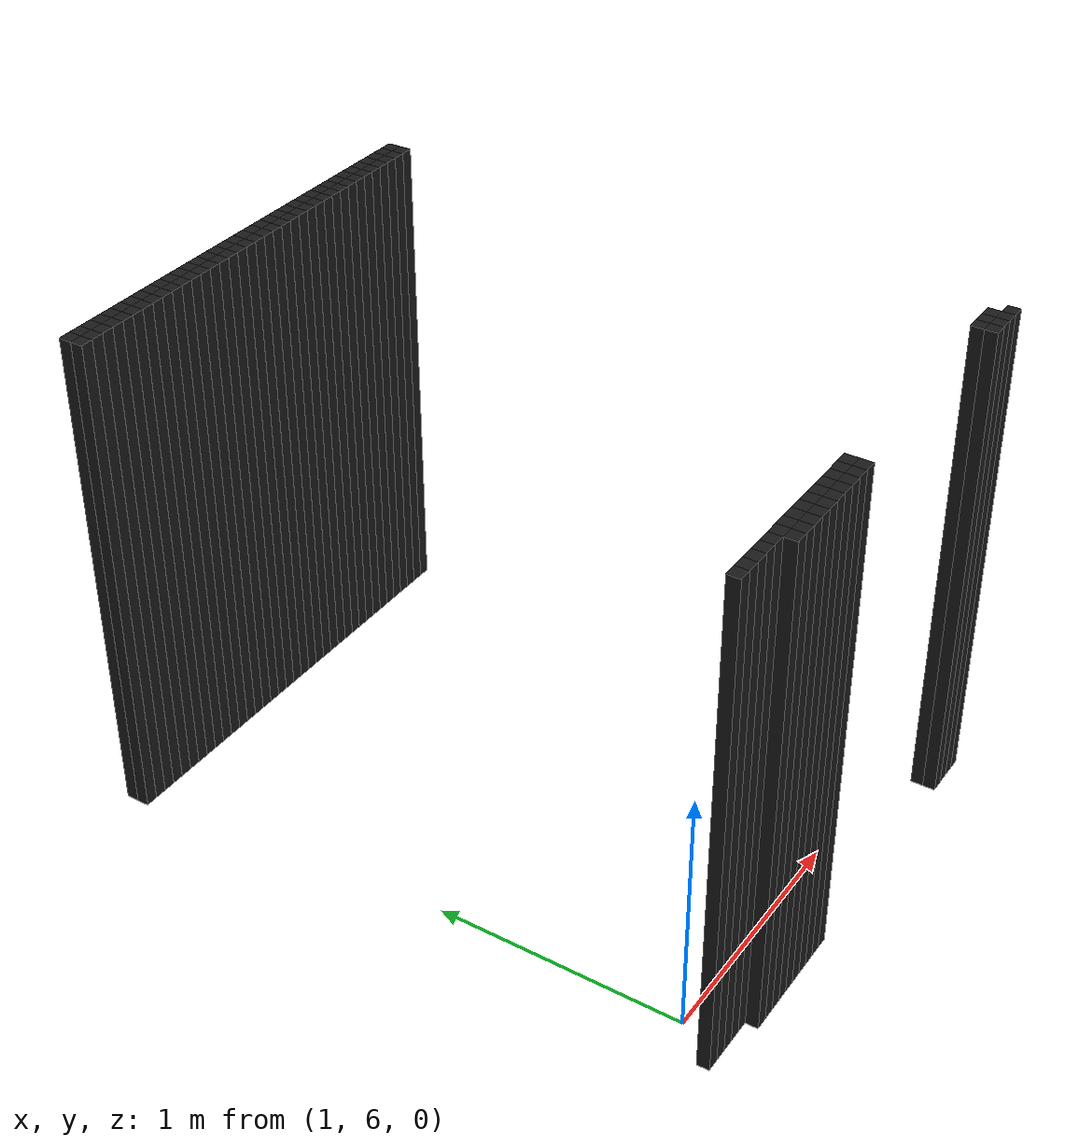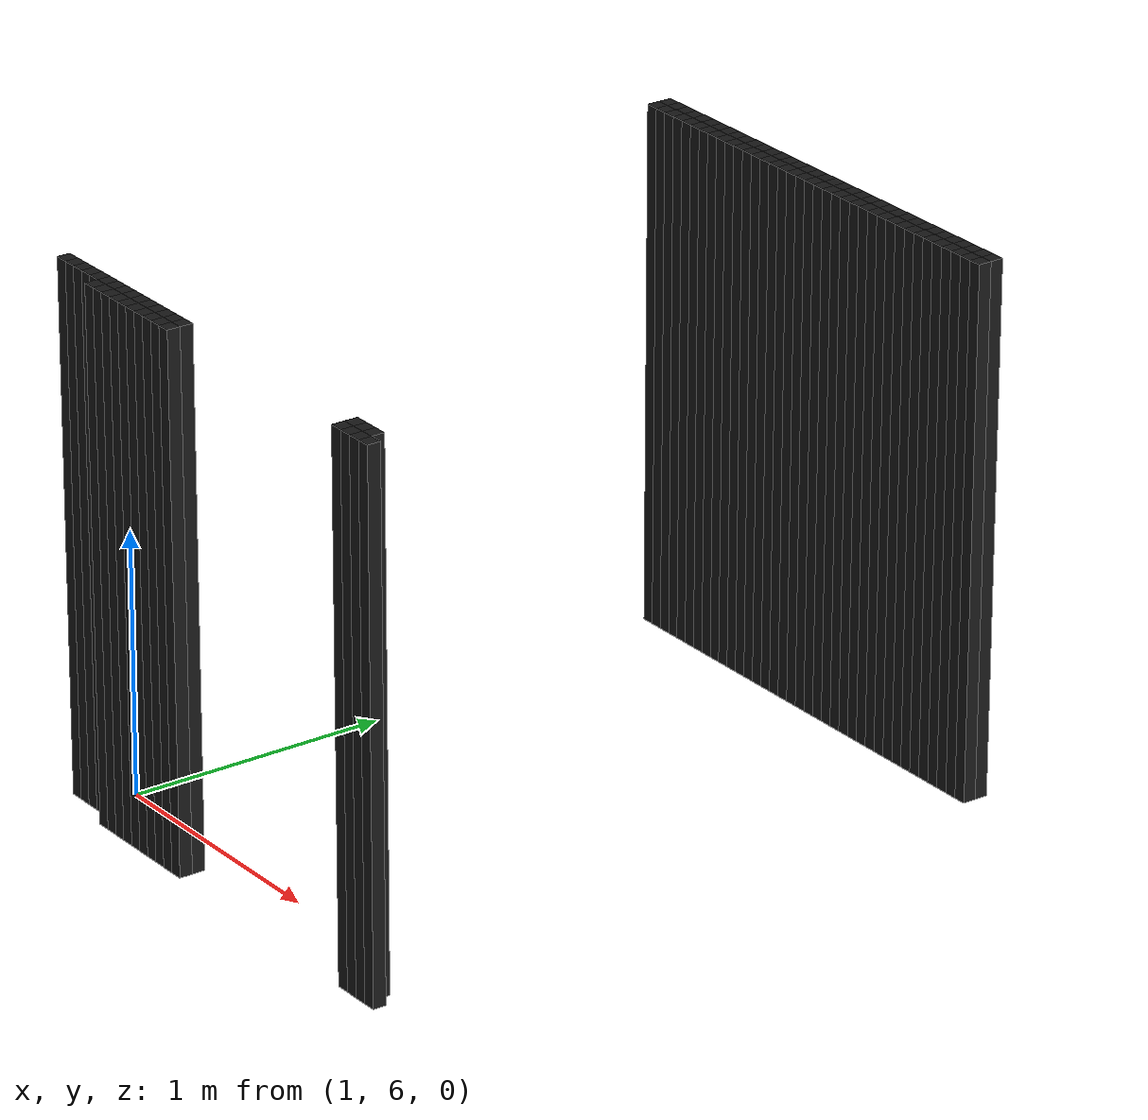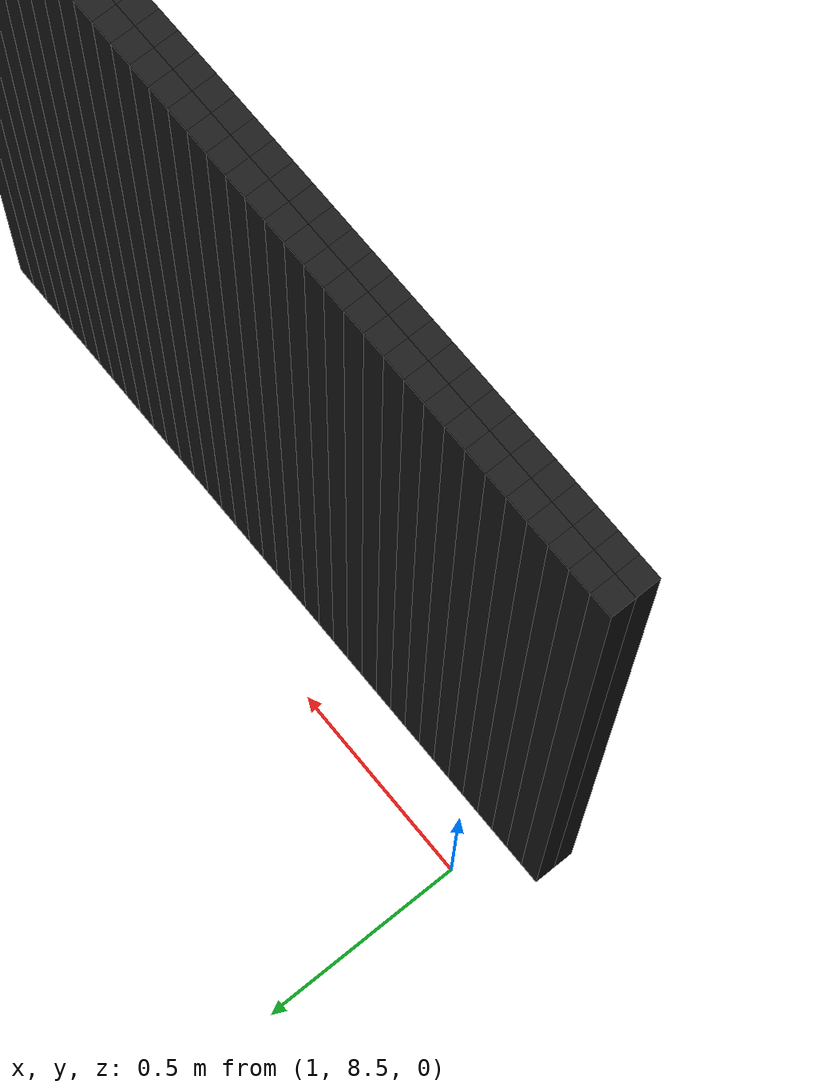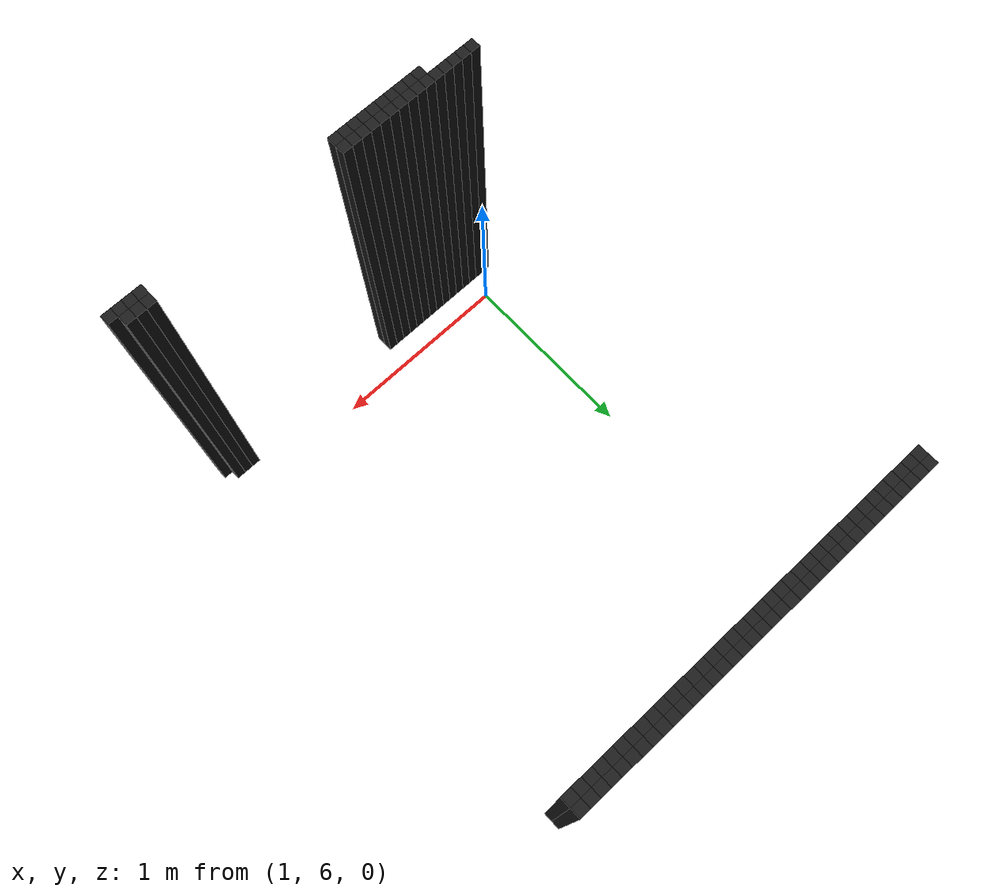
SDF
<sdf version="1.6">
 <model name="obstacle_108_0">
  <pose>0.8900000000000006 8.350000000000001 1.0 0 0 0</pose>
  <static>true</static>
  <link name="box_link">
   <collision name="box_collision"><geometry><box><size>0.05 0.05 2.0</size></box></geometry></collision>
   <visual name="box_visual">
    <geometry><box><size>0.05 0.05 2.0</size></box></geometry>
    <material><ambient>0 0 0 1</ambient><diffuse>0.1 0.1 0.1 1</diffuse></material>
   </visual>
  </link>
 </model>
 <model name="obstacle_109_0">
  <pose>0.9400000000000004 8.350000000000001 1.0 0 0 0</pose>
  <static>true</static>
  <link name="box_link">
   <collision name="box_collision"><geometry><box><size>0.05 0.05 2.0</size></box></geometry></collision>
   <visual name="box_visual">
    <geometry><box><size>0.05 0.05 2.0</size></box></geometry>
    <material><ambient>0 0 0 1</ambient><diffuse>0.1 0.1 0.1 1</diffuse></material>
   </visual>
  </link>
 </model>
 <model name="obstacle_110_0">
  <pose>0.9900000000000002 8.350000000000001 1.0 0 0 0</pose>
  <static>true</static>
  <link name="box_link">
   <collision name="box_collision"><geometry><box><size>0.05 0.05 2.0</size></box></geometry></collision>
   <visual name="box_visual">
    <geometry><box><size>0.05 0.05 2.0</size></box></geometry>
    <material><ambient>0 0 0 1</ambient><diffuse>0.1 0.1 0.1 1</diffuse></material>
   </visual>
  </link>
 </model>
 <model name="obstacle_111_0">
  <pose>1.040000000000001 8.350000000000001 1.0 0 0 0</pose>
  <static>true</static>
  <link name="box_link">
   <collision name="box_collision"><geometry><box><size>0.05 0.05 2.0</size></box></geometry></collision>
   <visual name="box_visual">
    <geometry><box><size>0.05 0.05 2.0</size></box></geometry>
    <material><ambient>0 0 0 1</ambient><diffuse>0.1 0.1 0.1 1</diffuse></material>
   </visual>
  </link>
 </model>
 <model name="obstacle_112_0">
  <pose>1.0900000000000007 8.350000000000001 1.0 0 0 0</pose>
  <static>true</static>
  <link name="box_link">
   <collision name="box_collision"><geometry><box><size>0.05 0.05 2.0</size></box></geometry></collision>
   <visual name="box_visual">
    <geometry><box><size>0.05 0.05 2.0</size></box></geometry>
    <material><ambient>0 0 0 1</ambient><diffuse>0.1 0.1 0.1 1</diffuse></material>
   </visual>
  </link>
 </model>
 <model name="obstacle_113_0">
  <pose>1.1400000000000006 8.350000000000001 1.0 0 0 0</pose>
  <static>true</static>
  <link name="box_link">
   <collision name="box_collision"><geometry><box><size>0.05 0.05 2.0</size></box></geometry></collision>
   <visual name="box_visual">
    <geometry><box><size>0.05 0.05 2.0</size></box></geometry>
    <material><ambient>0 0 0 1</ambient><diffuse>0.1 0.1 0.1 1</diffuse></material>
   </visual>
  </link>
 </model>
 <model name="obstacle_114_0">
  <pose>1.1900000000000004 8.350000000000001 1.0 0 0 0</pose>
  <static>true</static>
  <link name="box_link">
   <collision name="box_collision"><geometry><box><size>0.05 0.05 2.0</size></box></geometry></collision>
   <visual name="box_visual">
    <geometry><box><size>0.05 0.05 2.0</size></box></geometry>
    <material><ambient>0 0 0 1</ambient><diffuse>0.1 0.1 0.1 1</diffuse></material>
   </visual>
  </link>
 </model>
 <model name="obstacle_115_0">
  <pose>1.2400000000000002 8.350000000000001 1.0 0 0 0</pose>
  <static>true</static>
  <link name="box_link">
   <collision name="box_collision"><geometry><box><size>0.05 0.05 2.0</size></box></geometry></collision>
   <visual name="box_visual">
    <geometry><box><size>0.05 0.05 2.0</size></box></geometry>
    <material><ambient>0 0 0 1</ambient><diffuse>0.1 0.1 0.1 1</diffuse></material>
   </visual>
  </link>
 </model>
 <model name="obstacle_116_0">
  <pose>1.290000000000001 8.350000000000001 1.0 0 0 0</pose>
  <static>true</static>
  <link name="box_link">
   <collision name="box_collision"><geometry><box><size>0.05 0.05 2.0</size></box></geometry></collision>
   <visual name="box_visual">
    <geometry><box><size>0.05 0.05 2.0</size></box></geometry>
    <material><ambient>0 0 0 1</ambient><diffuse>0.1 0.1 0.1 1</diffuse></material>
   </visual>
  </link>
 </model>
 <model name="obstacle_117_0">
  <pose>1.3400000000000007 8.350000000000001 1.0 0 0 0</pose>
  <static>true</static>
  <link name="box_link">
   <collision name="box_collision"><geometry><box><size>0.05 0.05 2.0</size></box></geometry></collision>
   <visual name="box_visual">
    <geometry><box><size>0.05 0.05 2.0</size></box></geometry>
    <material><ambient>0 0 0 1</ambient><diffuse>0.1 0.1 0.1 1</diffuse></material>
   </visual>
  </link>
 </model>
 <model name="obstacle_118_0">
  <pose>1.3900000000000006 8.350000000000001 1.0 0 0 0</pose>
  <static>true</static>
  <link name="box_link">
   <collision name="box_collision"><geometry><box><size>0.05 0.05 2.0</size></box></geometry></collision>
   <visual name="box_visual">
    <geometry><box><size>0.05 0.05 2.0</size></box></geometry>
    <material><ambient>0 0 0 1</ambient><diffuse>0.1 0.1 0.1 1</diffuse></material>
   </visual>
  </link>
 </model>
 <model name="obstacle_119_0">
  <pose>1.4400000000000004 8.350000000000001 1.0 0 0 0</pose>
  <static>true</static>
  <link name="box_link">
   <collision name="box_collision"><geometry><box><size>0.05 0.05 2.0</size></box></geometry></collision>
   <visual name="box_visual">
    <geometry><box><size>0.05 0.05 2.0</size></box></geometry>
    <material><ambient>0 0 0 1</ambient><diffuse>0.1 0.1 0.1 1</diffuse></material>
   </visual>
  </link>
 </model>
 <model name="obstacle_120_0">
  <pose>1.4900000000000002 8.350000000000001 1.0 0 0 0</pose>
  <static>true</static>
  <link name="box_link">
   <collision name="box_collision"><geometry><box><size>0.05 0.05 2.0</size></box></geometry></collision>
   <visual name="box_visual">
    <geometry><box><size>0.05 0.05 2.0</size></box></geometry>
    <material><ambient>0 0 0 1</ambient><diffuse>0.1 0.1 0.1 1</diffuse></material>
   </visual>
  </link>
 </model>
 <model name="obstacle_121_0">
  <pose>1.540000000000001 8.350000000000001 1.0 0 0 0</pose>
  <static>true</static>
  <link name="box_link">
   <collision name="box_collision"><geometry><box><size>0.05 0.05 2.0</size></box></geometry></collision>
   <visual name="box_visual">
    <geometry><box><size>0.05 0.05 2.0</size></box></geometry>
    <material><ambient>0 0 0 1</ambient><diffuse>0.1 0.1 0.1 1</diffuse></material>
   </visual>
  </link>
 </model>
 <model name="obstacle_122_0">
  <pose>1.5900000000000007 8.350000000000001 1.0 0 0 0</pose>
  <static>true</static>
  <link name="box_link">
   <collision name="box_collision"><geometry><box><size>0.05 0.05 2.0</size></box></geometry></collision>
   <visual name="box_visual">
    <geometry><box><size>0.05 0.05 2.0</size></box></geometry>
    <material><ambient>0 0 0 1</ambient><diffuse>0.1 0.1 0.1 1</diffuse></material>
   </visual>
  </link>
 </model>
 <model name="obstacle_123_0">
  <pose>1.6400000000000006 8.350000000000001 1.0 0 0 0</pose>
  <static>true</static>
  <link name="box_link">
   <collision name="box_collision"><geometry><box><size>0.05 0.05 2.0</size></box></geometry></collision>
   <visual name="box_visual">
    <geometry><box><size>0.05 0.05 2.0</size></box></geometry>
    <material><ambient>0 0 0 1</ambient><diffuse>0.1 0.1 0.1 1</diffuse></material>
   </visual>
  </link>
 </model>
 <model name="obstacle_124_0">
  <pose>1.6900000000000004 8.350000000000001 1.0 0 0 0</pose>
  <static>true</static>
  <link name="box_link">
   <collision name="box_collision"><geometry><box><size>0.05 0.05 2.0</size></box></geometry></collision>
   <visual name="box_visual">
    <geometry><box><size>0.05 0.05 2.0</size></box></geometry>
    <material><ambient>0 0 0 1</ambient><diffuse>0.1 0.1 0.1 1</diffuse></material>
   </visual>
  </link>
 </model>
 <model name="obstacle_125_0">
  <pose>1.7400000000000002 8.350000000000001 1.0 0 0 0</pose>
  <static>true</static>
  <link name="box_link">
   <collision name="box_collision"><geometry><box><size>0.05 0.05 2.0</size></box></geometry></collision>
   <visual name="box_visual">
    <geometry><box><size>0.05 0.05 2.0</size></box></geometry>
    <material><ambient>0 0 0 1</ambient><diffuse>0.1 0.1 0.1 1</diffuse></material>
   </visual>
  </link>
 </model>
 <model name="obstacle_126_0">
  <pose>1.790000000000001 8.350000000000001 1.0 0 0 0</pose>
  <static>true</static>
  <link name="box_link">
   <collision name="box_collision"><geometry><box><size>0.05 0.05 2.0</size></box></geometry></collision>
   <visual name="box_visual">
    <geometry><box><size>0.05 0.05 2.0</size></box></geometry>
    <material><ambient>0 0 0 1</ambient><diffuse>0.1 0.1 0.1 1</diffuse></material>
   </visual>
  </link>
 </model>
 <model name="obstacle_127_0">
  <pose>1.8400000000000007 8.350000000000001 1.0 0 0 0</pose>
  <static>true</static>
  <link name="box_link">
   <collision name="box_collision"><geometry><box><size>0.05 0.05 2.0</size></box></geometry></collision>
   <visual name="box_visual">
    <geometry><box><size>0.05 0.05 2.0</size></box></geometry>
    <material><ambient>0 0 0 1</ambient><diffuse>0.1 0.1 0.1 1</diffuse></material>
   </visual>
  </link>
 </model>
 <model name="obstacle_128_0">
  <pose>1.8900000000000006 8.350000000000001 1.0 0 0 0</pose>
  <static>true</static>
  <link name="box_link">
   <collision name="box_collision"><geometry><box><size>0.05 0.05 2.0</size></box></geometry></collision>
   <visual name="box_visual">
    <geometry><box><size>0.05 0.05 2.0</size></box></geometry>
    <material><ambient>0 0 0 1</ambient><diffuse>0.1 0.1 0.1 1</diffuse></material>
   </visual>
  </link>
 </model>
 <model name="obstacle_129_0">
  <pose>1.9400000000000004 8.350000000000001 1.0 0 0 0</pose>
  <static>true</static>
  <link name="box_link">
   <collision name="box_collision"><geometry><box><size>0.05 0.05 2.0</size></box></geometry></collision>
   <visual name="box_visual">
    <geometry><box><size>0.05 0.05 2.0</size></box></geometry>
    <material><ambient>0 0 0 1</ambient><diffuse>0.1 0.1 0.1 1</diffuse></material>
   </visual>
  </link>
 </model>
 <model name="obstacle_130_0">
  <pose>1.9900000000000002 8.350000000000001 1.0 0 0 0</pose>
  <static>true</static>
  <link name="box_link">
   <collision name="box_collision"><geometry><box><size>0.05 0.05 2.0</size></box></geometry></collision>
   <visual name="box_visual">
    <geometry><box><size>0.05 0.05 2.0</size></box></geometry>
    <material><ambient>0 0 0 1</ambient><diffuse>0.1 0.1 0.1 1</diffuse></material>
   </visual>
  </link>
 </model>
 <model name="obstacle_131_0">
  <pose>2.040000000000001 8.350000000000001 1.0 0 0 0</pose>
  <static>true</static>
  <link name="box_link">
   <collision name="box_collision"><geometry><box><size>0.05 0.05 2.0</size></box></geometry></collision>
   <visual name="box_visual">
    <geometry><box><size>0.05 0.05 2.0</size></box></geometry>
    <material><ambient>0 0 0 1</ambient><diffuse>0.1 0.1 0.1 1</diffuse></material>
   </visual>
  </link>
 </model>
 <model name="obstacle_132_0">
  <pose>2.0900000000000007 8.350000000000001 1.0 0 0 0</pose>
  <static>true</static>
  <link name="box_link">
   <collision name="box_collision"><geometry><box><size>0.05 0.05 2.0</size></box></geometry></collision>
   <visual name="box_visual">
    <geometry><box><size>0.05 0.05 2.0</size></box></geometry>
    <material><ambient>0 0 0 1</ambient><diffuse>0.1 0.1 0.1 1</diffuse></material>
   </visual>
  </link>
 </model>
 <model name="obstacle_133_0">
  <pose>2.1400000000000006 8.350000000000001 1.0 0 0 0</pose>
  <static>true</static>
  <link name="box_link">
   <collision name="box_collision"><geometry><box><size>0.05 0.05 2.0</size></box></geometry></collision>
   <visual name="box_visual">
    <geometry><box><size>0.05 0.05 2.0</size></box></geometry>
    <material><ambient>0 0 0 1</ambient><diffuse>0.1 0.1 0.1 1</diffuse></material>
   </visual>
  </link>
 </model>
 <model name="obstacle_134_0">
  <pose>2.1900000000000004 8.350000000000001 1.0 0 0 0</pose>
  <static>true</static>
  <link name="box_link">
   <collision name="box_collision"><geometry><box><size>0.05 0.05 2.0</size></box></geometry></collision>
   <visual name="box_visual">
    <geometry><box><size>0.05 0.05 2.0</size></box></geometry>
    <material><ambient>0 0 0 1</ambient><diffuse>0.1 0.1 0.1 1</diffuse></material>
   </visual>
  </link>
 </model>
 <model name="obstacle_135_0">
  <pose>2.24 8.350000000000001 1.0 0 0 0</pose>
  <static>true</static>
  <link name="box_link">
   <collision name="box_collision"><geometry><box><size>0.05 0.05 2.0</size></box></geometry></collision>
   <visual name="box_visual">
    <geometry><box><size>0.05 0.05 2.0</size></box></geometry>
    <material><ambient>0 0 0 1</ambient><diffuse>0.1 0.1 0.1 1</diffuse></material>
   </visual>
  </link>
 </model>
 <model name="obstacle_136_0">
  <pose>2.290000000000001 8.350000000000001 1.0 0 0 0</pose>
  <static>true</static>
  <link name="box_link">
   <collision name="box_collision"><geometry><box><size>0.05 0.05 2.0</size></box></geometry></collision>
   <visual name="box_visual">
    <geometry><box><size>0.05 0.05 2.0</size></box></geometry>
    <material><ambient>0 0 0 1</ambient><diffuse>0.1 0.1 0.1 1</diffuse></material>
   </visual>
  </link>
 </model>
 <model name="obstacle_137_0">
  <pose>2.3400000000000007 8.350000000000001 1.0 0 0 0</pose>
  <static>true</static>
  <link name="box_link">
   <collision name="box_collision"><geometry><box><size>0.05 0.05 2.0</size></box></geometry></collision>
   <visual name="box_visual">
    <geometry><box><size>0.05 0.05 2.0</size></box></geometry>
    <material><ambient>0 0 0 1</ambient><diffuse>0.1 0.1 0.1 1</diffuse></material>
   </visual>
  </link>
 </model>
 <model name="obstacle_138_0">
  <pose>2.3900000000000006 8.350000000000001 1.0 0 0 0</pose>
  <static>true</static>
  <link name="box_link">
   <collision name="box_collision"><geometry><box><size>0.05 0.05 2.0</size></box></geometry></collision>
   <visual name="box_visual">
    <geometry><box><size>0.05 0.05 2.0</size></box></geometry>
    <material><ambient>0 0 0 1</ambient><diffuse>0.1 0.1 0.1 1</diffuse></material>
   </visual>
  </link>
 </model>
 <model name="obstacle_139_0">
  <pose>2.4400000000000004 8.350000000000001 1.0 0 0 0</pose>
  <static>true</static>
  <link name="box_link">
   <collision name="box_collision"><geometry><box><size>0.05 0.05 2.0</size></box></geometry></collision>
   <visual name="box_visual">
    <geometry><box><size>0.05 0.05 2.0</size></box></geometry>
    <material><ambient>0 0 0 1</ambient><diffuse>0.1 0.1 0.1 1</diffuse></material>
   </visual>
  </link>
 </model>
 <model name="obstacle_140_0">
  <pose>2.49 8.350000000000001 1.0 0 0 0</pose>
  <static>true</static>
  <link name="box_link">
   <collision name="box_collision"><geometry><box><size>0.05 0.05 2.0</size></box></geometry></collision>
   <visual name="box_visual">
    <geometry><box><size>0.05 0.05 2.0</size></box></geometry>
    <material><ambient>0 0 0 1</ambient><diffuse>0.1 0.1 0.1 1</diffuse></material>
   </visual>
  </link>
 </model>
 <model name="obstacle_141_0">
  <pose>2.540000000000001 8.350000000000001 1.0 0 0 0</pose>
  <static>true</static>
  <link name="box_link">
   <collision name="box_collision"><geometry><box><size>0.05 0.05 2.0</size></box></geometry></collision>
   <visual name="box_visual">
    <geometry><box><size>0.05 0.05 2.0</size></box></geometry>
    <material><ambient>0 0 0 1</ambient><diffuse>0.1 0.1 0.1 1</diffuse></material>
   </visual>
  </link>
 </model>
 <model name="obstacle_142_0">
  <pose>2.5900000000000007 8.350000000000001 1.0 0 0 0</pose>
  <static>true</static>
  <link name="box_link">
   <collision name="box_collision"><geometry><box><size>0.05 0.05 2.0</size></box></geometry></collision>
   <visual name="box_visual">
    <geometry><box><size>0.05 0.05 2.0</size></box></geometry>
    <material><ambient>0 0 0 1</ambient><diffuse>0.1 0.1 0.1 1</diffuse></material>
   </visual>
  </link>
 </model>
 <model name="obstacle_143_0">
  <pose>2.6400000000000006 8.350000000000001 1.0 0 0 0</pose>
  <static>true</static>
  <link name="box_link">
   <collision name="box_collision"><geometry><box><size>0.05 0.05 2.0</size></box></geometry></collision>
   <visual name="box_visual">
    <geometry><box><size>0.05 0.05 2.0</size></box></geometry>
    <material><ambient>0 0 0 1</ambient><diffuse>0.1 0.1 0.1 1</diffuse></material>
   </visual>
  </link>
 </model>
 <model name="obstacle_144_0">
  <pose>2.6900000000000004 8.350000000000001 1.0 0 0 0</pose>
  <static>true</static>
  <link name="box_link">
   <collision name="box_collision"><geometry><box><size>0.05 0.05 2.0</size></box></geometry></collision>
   <visual name="box_visual">
    <geometry><box><size>0.05 0.05 2.0</size></box></geometry>
    <material><ambient>0 0 0 1</ambient><diffuse>0.1 0.1 0.1 1</diffuse></material>
   </visual>
  </link>
 </model>
 <model name="obstacle_108_1">
  <pose>0.8900000000000006 8.3 1.0 0 0 0</pose>
  <static>true</static>
  <link name="box_link">
   <collision name="box_collision"><geometry><box><size>0.05 0.05 2.0</size></box></geometry></collision>
   <visual name="box_visual">
    <geometry><box><size>0.05 0.05 2.0</size></box></geometry>
    <material><ambient>0 0 0 1</ambient><diffuse>0.1 0.1 0.1 1</diffuse></material>
   </visual>
  </link>
 </model>
 <model name="obstacle_109_1">
  <pose>0.9400000000000004 8.3 1.0 0 0 0</pose>
  <static>true</static>
  <link name="box_link">
   <collision name="box_collision"><geometry><box><size>0.05 0.05 2.0</size></box></geometry></collision>
   <visual name="box_visual">
    <geometry><box><size>0.05 0.05 2.0</size></box></geometry>
    <material><ambient>0 0 0 1</ambient><diffuse>0.1 0.1 0.1 1</diffuse></material>
   </visual>
  </link>
 </model>
 <model name="obstacle_110_1">
  <pose>0.9900000000000002 8.3 1.0 0 0 0</pose>
  <static>true</static>
  <link name="box_link">
   <collision name="box_collision"><geometry><box><size>0.05 0.05 2.0</size></box></geometry></collision>
   <visual name="box_visual">
    <geometry><box><size>0.05 0.05 2.0</size></box></geometry>
    <material><ambient>0 0 0 1</ambient><diffuse>0.1 0.1 0.1 1</diffuse></material>
   </visual>
  </link>
 </model>
 <model name="obstacle_111_1">
  <pose>1.040000000000001 8.3 1.0 0 0 0</pose>
  <static>true</static>
  <link name="box_link">
   <collision name="box_collision"><geometry><box><size>0.05 0.05 2.0</size></box></geometry></collision>
   <visual name="box_visual">
    <geometry><box><size>0.05 0.05 2.0</size></box></geometry>
    <material><ambient>0 0 0 1</ambient><diffuse>0.1 0.1 0.1 1</diffuse></material>
   </visual>
  </link>
 </model>
 <model name="obstacle_112_1">
  <pose>1.0900000000000007 8.3 1.0 0 0 0</pose>
  <static>true</static>
  <link name="box_link">
   <collision name="box_collision"><geometry><box><size>0.05 0.05 2.0</size></box></geometry></collision>
   <visual name="box_visual">
    <geometry><box><size>0.05 0.05 2.0</size></box></geometry>
    <material><ambient>0 0 0 1</ambient><diffuse>0.1 0.1 0.1 1</diffuse></material>
   </visual>
  </link>
 </model>
 <model name="obstacle_113_1">
  <pose>1.1400000000000006 8.3 1.0 0 0 0</pose>
  <static>true</static>
  <link name="box_link">
   <collision name="box_collision"><geometry><box><size>0.05 0.05 2.0</size></box></geometry></collision>
   <visual name="box_visual">
    <geometry><box><size>0.05 0.05 2.0</size></box></geometry>
    <material><ambient>0 0 0 1</ambient><diffuse>0.1 0.1 0.1 1</diffuse></material>
   </visual>
  </link>
 </model>
 <model name="obstacle_114_1">
  <pose>1.1900000000000004 8.3 1.0 0 0 0</pose>
  <static>true</static>
  <link name="box_link">
   <collision name="box_collision"><geometry><box><size>0.05 0.05 2.0</size></box></geometry></collision>
   <visual name="box_visual">
    <geometry><box><size>0.05 0.05 2.0</size></box></geometry>
    <material><ambient>0 0 0 1</ambient><diffuse>0.1 0.1 0.1 1</diffuse></material>
   </visual>
  </link>
 </model>
 <model name="obstacle_115_1">
  <pose>1.2400000000000002 8.3 1.0 0 0 0</pose>
  <static>true</static>
  <link name="box_link">
   <collision name="box_collision"><geometry><box><size>0.05 0.05 2.0</size></box></geometry></collision>
   <visual name="box_visual">
    <geometry><box><size>0.05 0.05 2.0</size></box></geometry>
    <material><ambient>0 0 0 1</ambient><diffuse>0.1 0.1 0.1 1</diffuse></material>
   </visual>
  </link>
 </model>
 <model name="obstacle_116_1">
  <pose>1.290000000000001 8.3 1.0 0 0 0</pose>
  <static>true</static>
  <link name="box_link">
   <collision name="box_collision"><geometry><box><size>0.05 0.05 2.0</size></box></geometry></collision>
   <visual name="box_visual">
    <geometry><box><size>0.05 0.05 2.0</size></box></geometry>
    <material><ambient>0 0 0 1</ambient><diffuse>0.1 0.1 0.1 1</diffuse></material>
   </visual>
  </link>
 </model>
 <model name="obstacle_117_1">
  <pose>1.3400000000000007 8.3 1.0 0 0 0</pose>
  <static>true</static>
  <link name="box_link">
   <collision name="box_collision"><geometry><box><size>0.05 0.05 2.0</size></box></geometry></collision>
   <visual name="box_visual">
    <geometry><box><size>0.05 0.05 2.0</size></box></geometry>
    <material><ambient>0 0 0 1</ambient><diffuse>0.1 0.1 0.1 1</diffuse></material>
   </visual>
  </link>
 </model>
 <model name="obstacle_118_1">
  <pose>1.3900000000000006 8.3 1.0 0 0 0</pose>
  <static>true</static>
  <link name="box_link">
   <collision name="box_collision"><geometry><box><size>0.05 0.05 2.0</size></box></geometry></collision>
   <visual name="box_visual">
    <geometry><box><size>0.05 0.05 2.0</size></box></geometry>
    <material><ambient>0 0 0 1</ambient><diffuse>0.1 0.1 0.1 1</diffuse></material>
   </visual>
  </link>
 </model>
 <model name="obstacle_119_1">
  <pose>1.4400000000000004 8.3 1.0 0 0 0</pose>
  <static>true</static>
  <link name="box_link">
   <collision name="box_collision"><geometry><box><size>0.05 0.05 2.0</size></box></geometry></collision>
   <visual name="box_visual">
    <geometry><box><size>0.05 0.05 2.0</size></box></geometry>
    <material><ambient>0 0 0 1</ambient><diffuse>0.1 0.1 0.1 1</diffuse></material>
   </visual>
  </link>
 </model>
 <model name="obstacle_120_1">
  <pose>1.4900000000000002 8.3 1.0 0 0 0</pose>
  <static>true</static>
  <link name="box_link">
   <collision name="box_collision"><geometry><box><size>0.05 0.05 2.0</size></box></geometry></collision>
   <visual name="box_visual">
    <geometry><box><size>0.05 0.05 2.0</size></box></geometry>
    <material><ambient>0 0 0 1</ambient><diffuse>0.1 0.1 0.1 1</diffuse></material>
   </visual>
  </link>
 </model>
 <model name="obstacle_121_1">
  <pose>1.540000000000001 8.3 1.0 0 0 0</pose>
  <static>true</static>
  <link name="box_link">
   <collision name="box_collision"><geometry><box><size>0.05 0.05 2.0</size></box></geometry></collision>
   <visual name="box_visual">
    <geometry><box><size>0.05 0.05 2.0</size></box></geometry>
    <material><ambient>0 0 0 1</ambient><diffuse>0.1 0.1 0.1 1</diffuse></material>
   </visual>
  </link>
 </model>
 <model name="obstacle_122_1">
  <pose>1.5900000000000007 8.3 1.0 0 0 0</pose>
  <static>true</static>
  <link name="box_link">
   <collision name="box_collision"><geometry><box><size>0.05 0.05 2.0</size></box></geometry></collision>
   <visual name="box_visual">
    <geometry><box><size>0.05 0.05 2.0</size></box></geometry>
    <material><ambient>0 0 0 1</ambient><diffuse>0.1 0.1 0.1 1</diffuse></material>
   </visual>
  </link>
 </model>
 <model name="obstacle_123_1">
  <pose>1.6400000000000006 8.3 1.0 0 0 0</pose>
  <static>true</static>
  <link name="box_link">
   <collision name="box_collision"><geometry><box><size>0.05 0.05 2.0</size></box></geometry></collision>
   <visual name="box_visual">
    <geometry><box><size>0.05 0.05 2.0</size></box></geometry>
    <material><ambient>0 0 0 1</ambient><diffuse>0.1 0.1 0.1 1</diffuse></material>
   </visual>
  </link>
 </model>
 <model name="obstacle_124_1">
  <pose>1.6900000000000004 8.3 1.0 0 0 0</pose>
  <static>true</static>
  <link name="box_link">
   <collision name="box_collision"><geometry><box><size>0.05 0.05 2.0</size></box></geometry></collision>
   <visual name="box_visual">
    <geometry><box><size>0.05 0.05 2.0</size></box></geometry>
    <material><ambient>0 0 0 1</ambient><diffuse>0.1 0.1 0.1 1</diffuse></material>
   </visual>
  </link>
 </model>
 <model name="obstacle_125_1">
  <pose>1.7400000000000002 8.3 1.0 0 0 0</pose>
  <static>true</static>
  <link name="box_link">
   <collision name="box_collision"><geometry><box><size>0.05 0.05 2.0</size></box></geometry></collision>
   <visual name="box_visual">
    <geometry><box><size>0.05 0.05 2.0</size></box></geometry>
    <material><ambient>0 0 0 1</ambient><diffuse>0.1 0.1 0.1 1</diffuse></material>
   </visual>
  </link>
 </model>
 <model name="obstacle_126_1">
  <pose>1.790000000000001 8.3 1.0 0 0 0</pose>
  <static>true</static>
  <link name="box_link">
   <collision name="box_collision"><geometry><box><size>0.05 0.05 2.0</size></box></geometry></collision>
   <visual name="box_visual">
    <geometry><box><size>0.05 0.05 2.0</size></box></geometry>
    <material><ambient>0 0 0 1</ambient><diffuse>0.1 0.1 0.1 1</diffuse></material>
   </visual>
  </link>
 </model>
 <model name="obstacle_127_1">
  <pose>1.8400000000000007 8.3 1.0 0 0 0</pose>
  <static>true</static>
  <link name="box_link">
   <collision name="box_collision"><geometry><box><size>0.05 0.05 2.0</size></box></geometry></collision>
   <visual name="box_visual">
    <geometry><box><size>0.05 0.05 2.0</size></box></geometry>
    <material><ambient>0 0 0 1</ambient><diffuse>0.1 0.1 0.1 1</diffuse></material>
   </visual>
  </link>
 </model>
 <model name="obstacle_128_1">
  <pose>1.8900000000000006 8.3 1.0 0 0 0</pose>
  <static>true</static>
  <link name="box_link">
   <collision name="box_collision"><geometry><box><size>0.05 0.05 2.0</size></box></geometry></collision>
   <visual name="box_visual">
    <geometry><box><size>0.05 0.05 2.0</size></box></geometry>
    <material><ambient>0 0 0 1</ambient><diffuse>0.1 0.1 0.1 1</diffuse></material>
   </visual>
  </link>
 </model>
 <model name="obstacle_129_1">
  <pose>1.9400000000000004 8.3 1.0 0 0 0</pose>
  <static>true</static>
  <link name="box_link">
   <collision name="box_collision"><geometry><box><size>0.05 0.05 2.0</size></box></geometry></collision>
   <visual name="box_visual">
    <geometry><box><size>0.05 0.05 2.0</size></box></geometry>
    <material><ambient>0 0 0 1</ambient><diffuse>0.1 0.1 0.1 1</diffuse></material>
   </visual>
  </link>
 </model>
 <model name="obstacle_130_1">
  <pose>1.9900000000000002 8.3 1.0 0 0 0</pose>
  <static>true</static>
  <link name="box_link">
   <collision name="box_collision"><geometry><box><size>0.05 0.05 2.0</size></box></geometry></collision>
   <visual name="box_visual">
    <geometry><box><size>0.05 0.05 2.0</size></box></geometry>
    <material><ambient>0 0 0 1</ambient><diffuse>0.1 0.1 0.1 1</diffuse></material>
   </visual>
  </link>
 </model>
 <model name="obstacle_131_1">
  <pose>2.040000000000001 8.3 1.0 0 0 0</pose>
  <static>true</static>
  <link name="box_link">
   <collision name="box_collision"><geometry><box><size>0.05 0.05 2.0</size></box></geometry></collision>
   <visual name="box_visual">
    <geometry><box><size>0.05 0.05 2.0</size></box></geometry>
    <material><ambient>0 0 0 1</ambient><diffuse>0.1 0.1 0.1 1</diffuse></material>
   </visual>
  </link>
 </model>
 <model name="obstacle_132_1">
  <pose>2.0900000000000007 8.3 1.0 0 0 0</pose>
  <static>true</static>
  <link name="box_link">
   <collision name="box_collision"><geometry><box><size>0.05 0.05 2.0</size></box></geometry></collision>
   <visual name="box_visual">
    <geometry><box><size>0.05 0.05 2.0</size></box></geometry>
    <material><ambient>0 0 0 1</ambient><diffuse>0.1 0.1 0.1 1</diffuse></material>
   </visual>
  </link>
 </model>
 <model name="obstacle_133_1">
  <pose>2.1400000000000006 8.3 1.0 0 0 0</pose>
  <static>true</static>
  <link name="box_link">
   <collision name="box_collision"><geometry><box><size>0.05 0.05 2.0</size></box></geometry></collision>
   <visual name="box_visual">
    <geometry><box><size>0.05 0.05 2.0</size></box></geometry>
    <material><ambient>0 0 0 1</ambient><diffuse>0.1 0.1 0.1 1</diffuse></material>
   </visual>
  </link>
 </model>
 <model name="obstacle_134_1">
  <pose>2.1900000000000004 8.3 1.0 0 0 0</pose>
  <static>true</static>
  <link name="box_link">
   <collision name="box_collision"><geometry><box><size>0.05 0.05 2.0</size></box></geometry></collision>
   <visual name="box_visual">
    <geometry><box><size>0.05 0.05 2.0</size></box></geometry>
    <material><ambient>0 0 0 1</ambient><diffuse>0.1 0.1 0.1 1</diffuse></material>
   </visual>
  </link>
 </model>
 <model name="obstacle_135_1">
  <pose>2.24 8.3 1.0 0 0 0</pose>
  <static>true</static>
  <link name="box_link">
   <collision name="box_collision"><geometry><box><size>0.05 0.05 2.0</size></box></geometry></collision>
   <visual name="box_visual">
    <geometry><box><size>0.05 0.05 2.0</size></box></geometry>
    <material><ambient>0 0 0 1</ambient><diffuse>0.1 0.1 0.1 1</diffuse></material>
   </visual>
  </link>
 </model>
 <model name="obstacle_136_1">
  <pose>2.290000000000001 8.3 1.0 0 0 0</pose>
  <static>true</static>
  <link name="box_link">
   <collision name="box_collision"><geometry><box><size>0.05 0.05 2.0</size></box></geometry></collision>
   <visual name="box_visual">
    <geometry><box><size>0.05 0.05 2.0</size></box></geometry>
    <material><ambient>0 0 0 1</ambient><diffuse>0.1 0.1 0.1 1</diffuse></material>
   </visual>
  </link>
 </model>
 <model name="obstacle_137_1">
  <pose>2.3400000000000007 8.3 1.0 0 0 0</pose>
  <static>true</static>
  <link name="box_link">
   <collision name="box_collision"><geometry><box><size>0.05 0.05 2.0</size></box></geometry></collision>
   <visual name="box_visual">
    <geometry><box><size>0.05 0.05 2.0</size></box></geometry>
    <material><ambient>0 0 0 1</ambient><diffuse>0.1 0.1 0.1 1</diffuse></material>
   </visual>
  </link>
 </model>
 <model name="obstacle_138_1">
  <pose>2.3900000000000006 8.3 1.0 0 0 0</pose>
  <static>true</static>
  <link name="box_link">
   <collision name="box_collision"><geometry><box><size>0.05 0.05 2.0</size></box></geometry></collision>
   <visual name="box_visual">
    <geometry><box><size>0.05 0.05 2.0</size></box></geometry>
    <material><ambient>0 0 0 1</ambient><diffuse>0.1 0.1 0.1 1</diffuse></material>
   </visual>
  </link>
 </model>
 <model name="obstacle_139_1">
  <pose>2.4400000000000004 8.3 1.0 0 0 0</pose>
  <static>true</static>
  <link name="box_link">
   <collision name="box_collision"><geometry><box><size>0.05 0.05 2.0</size></box></geometry></collision>
   <visual name="box_visual">
    <geometry><box><size>0.05 0.05 2.0</size></box></geometry>
    <material><ambient>0 0 0 1</ambient><diffuse>0.1 0.1 0.1 1</diffuse></material>
   </visual>
  </link>
 </model>
 <model name="obstacle_140_1">
  <pose>2.49 8.3 1.0 0 0 0</pose>
  <static>true</static>
  <link name="box_link">
   <collision name="box_collision"><geometry><box><size>0.05 0.05 2.0</size></box></geometry></collision>
   <visual name="box_visual">
    <geometry><box><size>0.05 0.05 2.0</size></box></geometry>
    <material><ambient>0 0 0 1</ambient><diffuse>0.1 0.1 0.1 1</diffuse></material>
   </visual>
  </link>
 </model>
 <model name="obstacle_141_1">
  <pose>2.540000000000001 8.3 1.0 0 0 0</pose>
  <static>true</static>
  <link name="box_link">
   <collision name="box_collision"><geometry><box><size>0.05 0.05 2.0</size></box></geometry></collision>
   <visual name="box_visual">
    <geometry><box><size>0.05 0.05 2.0</size></box></geometry>
    <material><ambient>0 0 0 1</ambient><diffuse>0.1 0.1 0.1 1</diffuse></material>
   </visual>
  </link>
 </model>
 <model name="obstacle_142_1">
  <pose>2.5900000000000007 8.3 1.0 0 0 0</pose>
  <static>true</static>
  <link name="box_link">
   <collision name="box_collision"><geometry><box><size>0.05 0.05 2.0</size></box></geometry></collision>
   <visual name="box_visual">
    <geometry><box><size>0.05 0.05 2.0</size></box></geometry>
    <material><ambient>0 0 0 1</ambient><diffuse>0.1 0.1 0.1 1</diffuse></material>
   </visual>
  </link>
 </model>
 <model name="obstacle_143_1">
  <pose>2.6400000000000006 8.3 1.0 0 0 0</pose>
  <static>true</static>
  <link name="box_link">
   <collision name="box_collision"><geometry><box><size>0.05 0.05 2.0</size></box></geometry></collision>
   <visual name="box_visual">
    <geometry><box><size>0.05 0.05 2.0</size></box></geometry>
    <material><ambient>0 0 0 1</ambient><diffuse>0.1 0.1 0.1 1</diffuse></material>
   </visual>
  </link>
 </model>
 <model name="obstacle_144_1">
  <pose>2.6900000000000004 8.3 1.0 0 0 0</pose>
  <static>true</static>
  <link name="box_link">
   <collision name="box_collision"><geometry><box><size>0.05 0.05 2.0</size></box></geometry></collision>
   <visual name="box_visual">
    <geometry><box><size>0.05 0.05 2.0</size></box></geometry>
    <material><ambient>0 0 0 1</ambient><diffuse>0.1 0.1 0.1 1</diffuse></material>
   </visual>
  </link>
 </model>
 <model name="obstacle_108_50">
  <pose>0.8900000000000006 5.8500000000000005 1.0 0 0 0</pose>
  <static>true</static>
  <link name="box_link">
   <collision name="box_collision"><geometry><box><size>0.05 0.05 2.0</size></box></geometry></collision>
   <visual name="box_visual">
    <geometry><box><size>0.05 0.05 2.0</size></box></geometry>
    <material><ambient>0 0 0 1</ambient><diffuse>0.1 0.1 0.1 1</diffuse></material>
   </visual>
  </link>
 </model>
 <model name="obstacle_109_50">
  <pose>0.9400000000000004 5.8500000000000005 1.0 0 0 0</pose>
  <static>true</static>
  <link name="box_link">
   <collision name="box_collision"><geometry><box><size>0.05 0.05 2.0</size></box></geometry></collision>
   <visual name="box_visual">
    <geometry><box><size>0.05 0.05 2.0</size></box></geometry>
    <material><ambient>0 0 0 1</ambient><diffuse>0.1 0.1 0.1 1</diffuse></material>
   </visual>
  </link>
 </model>
 <model name="obstacle_110_50">
  <pose>0.9900000000000002 5.8500000000000005 1.0 0 0 0</pose>
  <static>true</static>
  <link name="box_link">
   <collision name="box_collision"><geometry><box><size>0.05 0.05 2.0</size></box></geometry></collision>
   <visual name="box_visual">
    <geometry><box><size>0.05 0.05 2.0</size></box></geometry>
    <material><ambient>0 0 0 1</ambient><diffuse>0.1 0.1 0.1 1</diffuse></material>
   </visual>
  </link>
 </model>
 <model name="obstacle_111_50">
  <pose>1.040000000000001 5.8500000000000005 1.0 0 0 0</pose>
  <static>true</static>
  <link name="box_link">
   <collision name="box_collision"><geometry><box><size>0.05 0.05 2.0</size></box></geometry></collision>
   <visual name="box_visual">
    <geometry><box><size>0.05 0.05 2.0</size></box></geometry>
    <material><ambient>0 0 0 1</ambient><diffuse>0.1 0.1 0.1 1</diffuse></material>
   </visual>
  </link>
 </model>
 <model name="obstacle_112_50">
  <pose>1.0900000000000007 5.8500000000000005 1.0 0 0 0</pose>
  <static>true</static>
  <link name="box_link">
   <collision name="box_collision"><geometry><box><size>0.05 0.05 2.0</size></box></geometry></collision>
   <visual name="box_visual">
    <geometry><box><size>0.05 0.05 2.0</size></box></geometry>
    <material><ambient>0 0 0 1</ambient><diffuse>0.1 0.1 0.1 1</diffuse></material>
   </visual>
  </link>
 </model>
 <model name="obstacle_113_50">
  <pose>1.1400000000000006 5.8500000000000005 1.0 0 0 0</pose>
  <static>true</static>
  <link name="box_link">
   <collision name="box_collision"><geometry><box><size>0.05 0.05 2.0</size></box></geometry></collision>
   <visual name="box_visual">
    <geometry><box><size>0.05 0.05 2.0</size></box></geometry>
    <material><ambient>0 0 0 1</ambient><diffuse>0.1 0.1 0.1 1</diffuse></material>
   </visual>
  </link>
 </model>
 <model name="obstacle_114_50">
  <pose>1.1900000000000004 5.8500000000000005 1.0 0 0 0</pose>
  <static>true</static>
  <link name="box_link">
   <collision name="box_collision"><geometry><box><size>0.05 0.05 2.0</size></box></geometry></collision>
   <visual name="box_visual">
    <geometry><box><size>0.05 0.05 2.0</size></box></geometry>
    <material><ambient>0 0 0 1</ambient><diffuse>0.1 0.1 0.1 1</diffuse></material>
   </visual>
  </link>
 </model>
 <model name="obstacle_115_50">
  <pose>1.2400000000000002 5.8500000000000005 1.0 0 0 0</pose>
  <static>true</static>
  <link name="box_link">
   <collision name="box_collision"><geometry><box><size>0.05 0.05 2.0</size></box></geometry></collision>
   <visual name="box_visual">
    <geometry><box><size>0.05 0.05 2.0</size></box></geometry>
    <material><ambient>0 0 0 1</ambient><diffuse>0.1 0.1 0.1 1</diffuse></material>
   </visual>
  </link>
 </model>
 <model name="obstacle_116_50">
  <pose>1.290000000000001 5.8500000000000005 1.0 0 0 0</pose>
  <static>true</static>
  <link name="box_link">
   <collision name="box_collision"><geometry><box><size>0.05 0.05 2.0</size></box></geometry></collision>
   <visual name="box_visual">
    <geometry><box><size>0.05 0.05 2.0</size></box></geometry>
    <material><ambient>0 0 0 1</ambient><diffuse>0.1 0.1 0.1 1</diffuse></material>
   </visual>
  </link>
 </model>
 <model name="obstacle_117_50">
  <pose>1.3400000000000007 5.8500000000000005 1.0 0 0 0</pose>
  <static>true</static>
  <link name="box_link">
   <collision name="box_collision"><geometry><box><size>0.05 0.05 2.0</size></box></geometry></collision>
   <visual name="box_visual">
    <geometry><box><size>0.05 0.05 2.0</size></box></geometry>
    <material><ambient>0 0 0 1</ambient><diffuse>0.1 0.1 0.1 1</diffuse></material>
   </visual>
  </link>
 </model>
 <model name="obstacle_118_50">
  <pose>1.3900000000000006 5.8500000000000005 1.0 0 0 0</pose>
  <static>true</static>
  <link name="box_link">
   <collision name="box_collision"><geometry><box><size>0.05 0.05 2.0</size></box></geometry></collision>
   <visual name="box_visual">
    <geometry><box><size>0.05 0.05 2.0</size></box></geometry>
    <material><ambient>0 0 0 1</ambient><diffuse>0.1 0.1 0.1 1</diffuse></material>
   </visual>
  </link>
 </model>
 <model name="obstacle_119_50">
  <pose>1.4400000000000004 5.8500000000000005 1.0 0 0 0</pose>
  <static>true</static>
  <link name="box_link">
   <collision name="box_collision"><geometry><box><size>0.05 0.05 2.0</size></box></geometry></collision>
   <visual name="box_visual">
    <geometry><box><size>0.05 0.05 2.0</size></box></geometry>
    <material><ambient>0 0 0 1</ambient><diffuse>0.1 0.1 0.1 1</diffuse></material>
   </visual>
  </link>
 </model>
 <model name="obstacle_120_50">
  <pose>1.4900000000000002 5.8500000000000005 1.0 0 0 0</pose>
  <static>true</static>
  <link name="box_link">
   <collision name="box_collision"><geometry><box><size>0.05 0.05 2.0</size></box></geometry></collision>
   <visual name="box_visual">
    <geometry><box><size>0.05 0.05 2.0</size></box></geometry>
    <material><ambient>0 0 0 1</ambient><diffuse>0.1 0.1 0.1 1</diffuse></material>
   </visual>
  </link>
 </model>
 <model name="obstacle_121_50">
  <pose>1.540000000000001 5.8500000000000005 1.0 0 0 0</pose>
  <static>true</static>
  <link name="box_link">
   <collision name="box_collision"><geometry><box><size>0.05 0.05 2.0</size></box></geometry></collision>
   <visual name="box_visual">
    <geometry><box><size>0.05 0.05 2.0</size></box></geometry>
    <material><ambient>0 0 0 1</ambient><diffuse>0.1 0.1 0.1 1</diffuse></material>
   </visual>
  </link>
 </model>
 <model name="obstacle_122_50">
  <pose>1.5900000000000007 5.8500000000000005 1.0 0 0 0</pose>
  <static>true</static>
  <link name="box_link">
   <collision name="box_collision"><geometry><box><size>0.05 0.05 2.0</size></box></geometry></collision>
   <visual name="box_visual">
    <geometry><box><size>0.05 0.05 2.0</size></box></geometry>
    <material><ambient>0 0 0 1</ambient><diffuse>0.1 0.1 0.1 1</diffuse></material>
   </visual>
  </link>
 </model>
 <model name="obstacle_142_50">
  <pose>2.5900000000000007 5.8500000000000005 1.0 0 0 0</pose>
  <static>true</static>
  <link name="box_link">
   <collision name="box_collision"><geometry><box><size>0.05 0.05 2.0</size></box></geometry></collision>
   <visual name="box_visual">
    <geometry><box><size>0.05 0.05 2.0</size></box></geometry>
    <material><ambient>0 0 0 1</ambient><diffuse>0.1 0.1 0.1 1</diffuse></material>
   </visual>
  </link>
 </model>
 <model name="obstacle_143_50">
  <pose>2.6400000000000006 5.8500000000000005 1.0 0 0 0</pose>
  <static>true</static>
  <link name="box_link">
   <collision name="box_collision"><geometry><box><size>0.05 0.05 2.0</size></box></geometry></collision>
   <visual name="box_visual">
    <geometry><box><size>0.05 0.05 2.0</size></box></geometry>
    <material><ambient>0 0 0 1</ambient><diffuse>0.1 0.1 0.1 1</diffuse></material>
   </visual>
  </link>
 </model>
 <model name="obstacle_144_50">
  <pose>2.6900000000000004 5.8500000000000005 1.0 0 0 0</pose>
  <static>true</static>
  <link name="box_link">
   <collision name="box_collision"><geometry><box><size>0.05 0.05 2.0</size></box></geometry></collision>
   <visual name="box_visual">
    <geometry><box><size>0.05 0.05 2.0</size></box></geometry>
    <material><ambient>0 0 0 1</ambient><diffuse>0.1 0.1 0.1 1</diffuse></material>
   </visual>
  </link>
 </model>
 <model name="obstacle_113_51">
  <pose>1.1400000000000006 5.8 1.0 0 0 0</pose>
  <static>true</static>
  <link name="box_link">
   <collision name="box_collision"><geometry><box><size>0.05 0.05 2.0</size></box></geometry></collision>
   <visual name="box_visual">
    <geometry><box><size>0.05 0.05 2.0</size></box></geometry>
    <material><ambient>0 0 0 1</ambient><diffuse>0.1 0.1 0.1 1</diffuse></material>
   </visual>
  </link>
 </model>
 <model name="obstacle_114_51">
  <pose>1.1900000000000004 5.8 1.0 0 0 0</pose>
  <static>true</static>
  <link name="box_link">
   <collision name="box_collision"><geometry><box><size>0.05 0.05 2.0</size></box></geometry></collision>
   <visual name="box_visual">
    <geometry><box><size>0.05 0.05 2.0</size></box></geometry>
    <material><ambient>0 0 0 1</ambient><diffuse>0.1 0.1 0.1 1</diffuse></material>
   </visual>
  </link>
 </model>
 <model name="obstacle_115_51">
  <pose>1.2400000000000002 5.8 1.0 0 0 0</pose>
  <static>true</static>
  <link name="box_link">
   <collision name="box_collision"><geometry><box><size>0.05 0.05 2.0</size></box></geometry></collision>
   <visual name="box_visual">
    <geometry><box><size>0.05 0.05 2.0</size></box></geometry>
    <material><ambient>0 0 0 1</ambient><diffuse>0.1 0.1 0.1 1</diffuse></material>
   </visual>
  </link>
 </model>
 <model name="obstacle_116_51">
  <pose>1.290000000000001 5.8 1.0 0 0 0</pose>
  <static>true</static>
  <link name="box_link">
   <collision name="box_collision"><geometry><box><size>0.05 0.05 2.0</size></box></geometry></collision>
   <visual name="box_visual">
    <geometry><box><size>0.05 0.05 2.0</size></box></geometry>
    <material><ambient>0 0 0 1</ambient><diffuse>0.1 0.1 0.1 1</diffuse></material>
   </visual>
  </link>
 </model>
 <model name="obstacle_117_51">
  <pose>1.3400000000000007 5.8 1.0 0 0 0</pose>
  <static>true</static>
  <link name="box_link">
   <collision name="box_collision"><geometry><box><size>0.05 0.05 2.0</size></box></geometry></collision>
   <visual name="box_visual">
    <geometry><box><size>0.05 0.05 2.0</size></box></geometry>
    <material><ambient>0 0 0 1</ambient><diffuse>0.1 0.1 0.1 1</diffuse></material>
   </visual>
  </link>
 </model>
 <model name="obstacle_118_51">
  <pose>1.3900000000000006 5.8 1.0 0 0 0</pose>
  <static>true</static>
  <link name="box_link">
   <collision name="box_collision"><geometry><box><size>0.05 0.05 2.0</size></box></geometry></collision>
   <visual name="box_visual">
    <geometry><box><size>0.05 0.05 2.0</size></box></geometry>
    <material><ambient>0 0 0 1</ambient><diffuse>0.1 0.1 0.1 1</diffuse></material>
   </visual>
  </link>
 </model>
 <model name="obstacle_119_51">
  <pose>1.4400000000000004 5.8 1.0 0 0 0</pose>
  <static>true</static>
  <link name="box_link">
   <collision name="box_collision"><geometry><box><size>0.05 0.05 2.0</size></box></geometry></collision>
   <visual name="box_visual">
    <geometry><box><size>0.05 0.05 2.0</size></box></geometry>
    <material><ambient>0 0 0 1</ambient><diffuse>0.1 0.1 0.1 1</diffuse></material>
   </visual>
  </link>
 </model>
 <model name="obstacle_120_51">
  <pose>1.4900000000000002 5.8 1.0 0 0 0</pose>
  <static>true</static>
  <link name="box_link">
   <collision name="box_collision"><geometry><box><size>0.05 0.05 2.0</size></box></geometry></collision>
   <visual name="box_visual">
    <geometry><box><size>0.05 0.05 2.0</size></box></geometry>
    <material><ambient>0 0 0 1</ambient><diffuse>0.1 0.1 0.1 1</diffuse></material>
   </visual>
  </link>
 </model>
 <model name="obstacle_121_51">
  <pose>1.540000000000001 5.8 1.0 0 0 0</pose>
  <static>true</static>
  <link name="box_link">
   <collision name="box_collision"><geometry><box><size>0.05 0.05 2.0</size></box></geometry></collision>
   <visual name="box_visual">
    <geometry><box><size>0.05 0.05 2.0</size></box></geometry>
    <material><ambient>0 0 0 1</ambient><diffuse>0.1 0.1 0.1 1</diffuse></material>
   </visual>
  </link>
 </model>
 <model name="obstacle_122_51">
  <pose>1.5900000000000007 5.8 1.0 0 0 0</pose>
  <static>true</static>
  <link name="box_link">
   <collision name="box_collision"><geometry><box><size>0.05 0.05 2.0</size></box></geometry></collision>
   <visual name="box_visual">
    <geometry><box><size>0.05 0.05 2.0</size></box></geometry>
    <material><ambient>0 0 0 1</ambient><diffuse>0.1 0.1 0.1 1</diffuse></material>
   </visual>
  </link>
 </model>
 <model name="obstacle_142_51">
  <pose>2.5900000000000007 5.8 1.0 0 0 0</pose>
  <static>true</static>
  <link name="box_link">
   <collision name="box_collision"><geometry><box><size>0.05 0.05 2.0</size></box></geometry></collision>
   <visual name="box_visual">
    <geometry><box><size>0.05 0.05 2.0</size></box></geometry>
    <material><ambient>0 0 0 1</ambient><diffuse>0.1 0.1 0.1 1</diffuse></material>
   </visual>
  </link>
 </model>
 <model name="obstacle_143_51">
  <pose>2.6400000000000006 5.8 1.0 0 0 0</pose>
  <static>true</static>
  <link name="box_link">
   <collision name="box_collision"><geometry><box><size>0.05 0.05 2.0</size></box></geometry></collision>
   <visual name="box_visual">
    <geometry><box><size>0.05 0.05 2.0</size></box></geometry>
    <material><ambient>0 0 0 1</ambient><diffuse>0.1 0.1 0.1 1</diffuse></material>
   </visual>
  </link>
 </model>
 <model name="obstacle_144_51">
  <pose>2.6900000000000004 5.8 1.0 0 0 0</pose>
  <static>true</static>
  <link name="box_link">
   <collision name="box_collision"><geometry><box><size>0.05 0.05 2.0</size></box></geometry></collision>
   <visual name="box_visual">
    <geometry><box><size>0.05 0.05 2.0</size></box></geometry>
    <material><ambient>0 0 0 1</ambient><diffuse>0.1 0.1 0.1 1</diffuse></material>
   </visual>
  </link>
 </model>
 <model name="obstacle_145_51">
  <pose>2.74 5.8 1.0 0 0 0</pose>
  <static>true</static>
  <link name="box_link">
   <collision name="box_collision"><geometry><box><size>0.05 0.05 2.0</size></box></geometry></collision>
   <visual name="box_visual">
    <geometry><box><size>0.05 0.05 2.0</size></box></geometry>
    <material><ambient>0 0 0 1</ambient><diffuse>0.1 0.1 0.1 1</diffuse></material>
   </visual>
  </link>
 </model>
</sdf>
